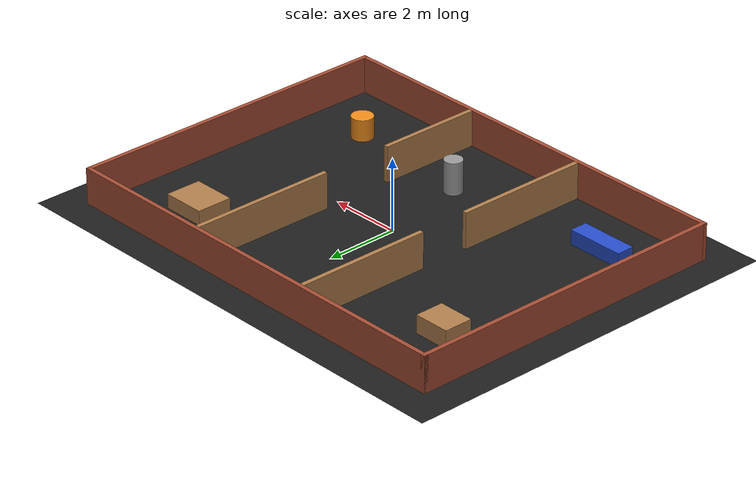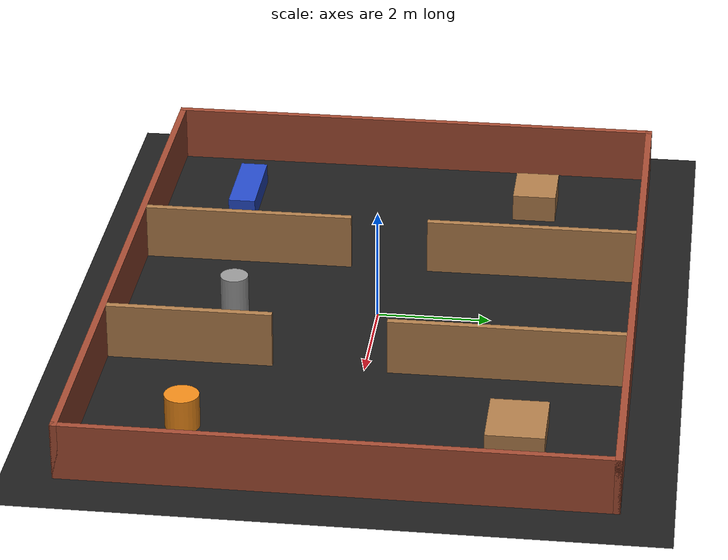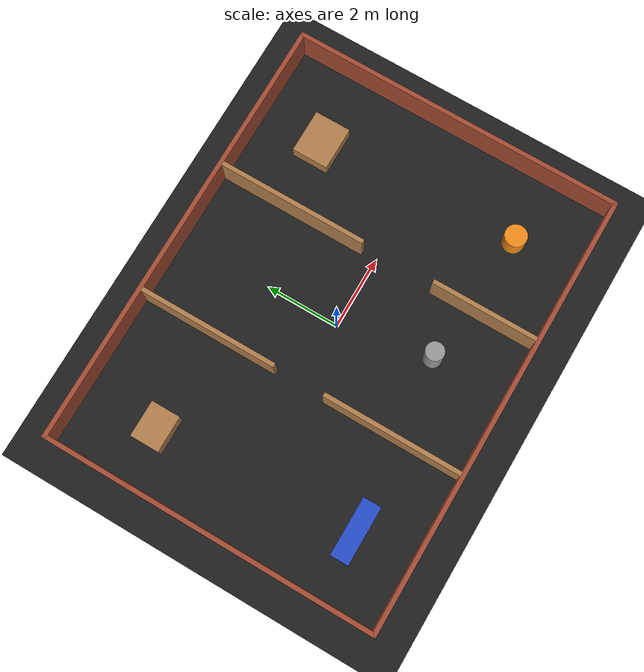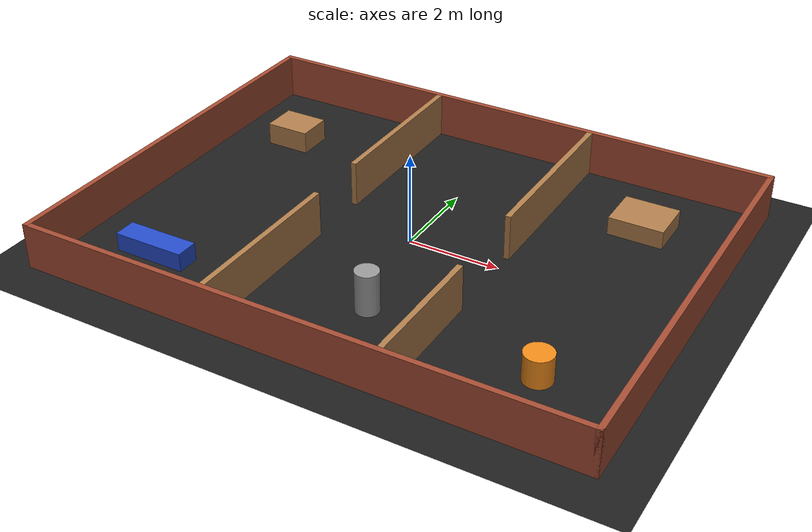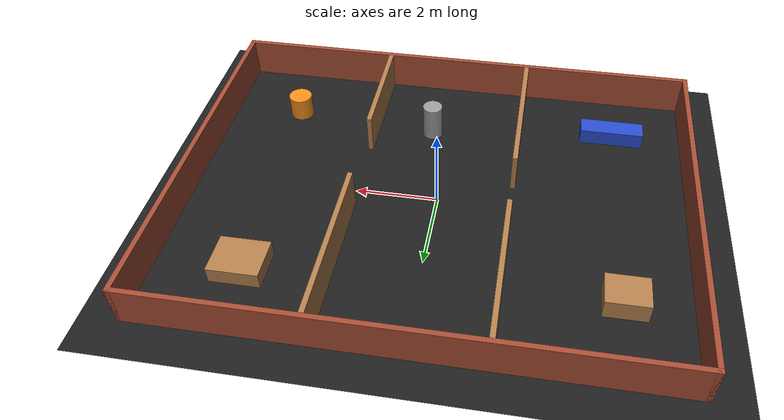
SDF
<?xml version="1.0"?>
<sdf version='1.7'>
  <world name='lab'>

    <physics name='default_physics' default='0' type='ode'>
      <max_step_size>0.002</max_step_size>
      <real_time_factor>1</real_time_factor>
      <real_time_update_rate>500</real_time_update_rate>
    </physics>

    <scene>
      <ambient>0.65 0.65 0.65 1</ambient>
      <background>0.7 0.8 0.9 1</background>
      <shadows>0</shadows>
    </scene>

    <light name='sun' type='directional'>
      <cast_shadows>0</cast_shadows>
      <pose>0 0 10 0 -0 0</pose>
      <diffuse>0.8 0.8 0.8 1</diffuse>
      <specular>0.2 0.2 0.2 1</specular>
      <direction>-0.5 0.1 -0.9</direction>
    </light>

    <model name='ground_plane'>
      <static>1</static>
      <link name='link'>
        <collision name='collision'>
          <geometry>
            <plane>
              <normal>0 0 1</normal>
              <size>20 20</size>
            </plane>
          </geometry>
          <surface>
            <friction>
              <ode>
                <mu>1.0</mu>
                <mu2>1.0</mu2>
              </ode>
            </friction>
          </surface>
        </collision>
        <visual name='visual'>
          <geometry>
            <plane>
              <normal>0 0 1</normal>
              <size>0 0 0</size>
            </plane>
          </geometry>
          <material>
            <script>
              <uri>file://media/materials/scripts/gazebo.material</uri>
              <name>Gazebo/FlatBlack</name>
            </script>
          </material>
        </visual>
      </link>
    </model>

    <model name='wall_north'>
      <static>1</static>
      <pose>0 4.56 0.5 0 0 0</pose>
      <link name='link'>
        <collision name='collision'><geometry><box><size>12.24 0.12 1.0</size></box></geometry></collision>
        <visual name='visual'><geometry><box><size>12.24 0.12 1.0</size></box></geometry>
          <material><script><uri>file://media/materials/scripts/gazebo.material</uri><name>Gazebo/Bricks</name></script></material>
        </visual>
      </link>
    </model>

    <model name='wall_south'>
      <static>1</static>
      <pose>0 -4.56 0.5 0 0 0</pose>
      <link name='link'>
        <collision name='collision'><geometry><box><size>12.24 0.12 1.0</size></box></geometry></collision>
        <visual name='visual'><geometry><box><size>12.24 0.12 1.0</size></box></geometry>
          <material><script><uri>file://media/materials/scripts/gazebo.material</uri><name>Gazebo/Bricks</name></script></material>
        </visual>
      </link>
    </model>

    <model name='wall_west'>
      <static>1</static>
      <pose>-6.06 0 0.5 0 0 0</pose>
      <link name='link'>
        <collision name='collision'><geometry><box><size>0.12 9.24 1.0</size></box></geometry></collision>
        <visual name='visual'><geometry><box><size>0.12 9.24 1.0</size></box></geometry>
          <material><script><uri>file://media/materials/scripts/gazebo.material</uri><name>Gazebo/Bricks</name></script></material>
        </visual>
      </link>
    </model>

    <model name='wall_east'>
      <static>1</static>
      <pose>6.06 0 0.5 0 0 0</pose>
      <link name='link'>
        <collision name='collision'><geometry><box><size>0.12 9.24 1.0</size></box></geometry></collision>
        <visual name='visual'><geometry><box><size>0.12 9.24 1.0</size></box></geometry>
          <material><script><uri>file://media/materials/scripts/gazebo.material</uri><name>Gazebo/Bricks</name></script></material>
        </visual>
      </link>
    </model>

    <model name='divider_a_south'>
      <static>1</static>
      <pose>-1.8 -2.6 0.5 0 0 0</pose>
      <link name='link'>
        <collision name='collision'><geometry><box><size>0.12 3.8 1.0</size></box></geometry></collision>
        <visual name='visual'><geometry><box><size>0.12 3.8 1.0</size></box></geometry>
          <material><script><uri>file://media/materials/scripts/gazebo.material</uri><name>Gazebo/Wood</name></script></material>
        </visual>
      </link>
    </model>

    <model name='divider_a_north'>
      <static>1</static>
      <pose>-1.8 2.6 0.5 0 0 0</pose>
      <link name='link'>
        <collision name='collision'><geometry><box><size>0.12 3.8 1.0</size></box></geometry></collision>
        <visual name='visual'><geometry><box><size>0.12 3.8 1.0</size></box></geometry>
          <material><script><uri>file://media/materials/scripts/gazebo.material</uri><name>Gazebo/Wood</name></script></material>
        </visual>
      </link>
    </model>

    <model name='divider_b_south'>
      <static>1</static>
      <pose>2.0 -3.05 0.5 0 0 0</pose>
      <link name='link'>
        <collision name='collision'><geometry><box><size>0.12 2.9 1.0</size></box></geometry></collision>
        <visual name='visual'><geometry><box><size>0.12 2.9 1.0</size></box></geometry>
          <material><script><uri>file://media/materials/scripts/gazebo.material</uri><name>Gazebo/Wood</name></script></material>
        </visual>
      </link>
    </model>

    <model name='divider_b_north'>
      <static>1</static>
      <pose>2.0 2.45 0.5 0 0 0</pose>
      <link name='link'>
        <collision name='collision'><geometry><box><size>0.12 4.1 1.0</size></box></geometry></collision>
        <visual name='visual'><geometry><box><size>0.12 4.1 1.0</size></box></geometry>
          <material><script><uri>file://media/materials/scripts/gazebo.material</uri><name>Gazebo/Wood</name></script></material>
        </visual>
      </link>
    </model>

    <model name='crate'>
      <static>1</static>
      <pose>-4.5 2.5 0.25 0 0 0</pose>
      <link name='link'>
        <collision name='collision'><geometry><box><size>1.0 0.8 0.5</size></box></geometry></collision>
        <visual name='visual'><geometry><box><size>1.0 0.8 0.5</size></box></geometry>
          <material><script><uri>file://media/materials/scripts/gazebo.material</uri><name>Gazebo/WoodGrain</name></script></material>
        </visual>
      </link>
    </model>

    <model name='bench'>
      <static>1</static>
      <pose>-4.2 -3.0 0.2 0 0 0</pose>
      <link name='link'>
        <collision name='collision'><geometry><box><size>1.6 0.5 0.4</size></box></geometry></collision>
        <visual name='visual'><geometry><box><size>1.6 0.5 0.4</size></box></geometry>
          <material><script><uri>file://media/materials/scripts/gazebo.material</uri><name>Gazebo/Blue</name></script></material>
        </visual>
      </link>
    </model>

    <model name='pillar'>
      <static>1</static>
      <pose>0.5 -2.5 0.45 0 0 0</pose>
      <link name='link'>
        <collision name='collision'><geometry><cylinder><radius>0.25</radius><length>0.9</length></cylinder></geometry></collision>
        <visual name='visual'><geometry><cylinder><radius>0.25</radius><length>0.9</length></cylinder></geometry>
          <material><script><uri>file://media/materials/scripts/gazebo.material</uri><name>Gazebo/Grey</name></script></material>
        </visual>
      </link>
    </model>

    <model name='pallet'>
      <static>1</static>
      <pose>4.0 2.8 0.2 0 0 0</pose>
      <link name='link'>
        <collision name='collision'><geometry><box><size>1.2 1.0 0.4</size></box></geometry></collision>
        <visual name='visual'><geometry><box><size>1.2 1.0 0.4</size></box></geometry>
          <material><script><uri>file://media/materials/scripts/gazebo.material</uri><name>Gazebo/WoodGrain</name></script></material>
        </visual>
      </link>
    </model>

    <model name='drum'>
      <static>1</static>
      <pose>4.2 -2.8 0.3 0 0 0</pose>
      <link name='link'>
        <collision name='collision'><geometry><cylinder><radius>0.3</radius><length>0.6</length></cylinder></geometry></collision>
        <visual name='visual'><geometry><cylinder><radius>0.3</radius><length>0.6</length></cylinder></geometry>
          <material><script><uri>file://media/materials/scripts/gazebo.material</uri><name>Gazebo/Orange</name></script></material>
        </visual>
      </link>
    </model>

  </world>
</sdf>
